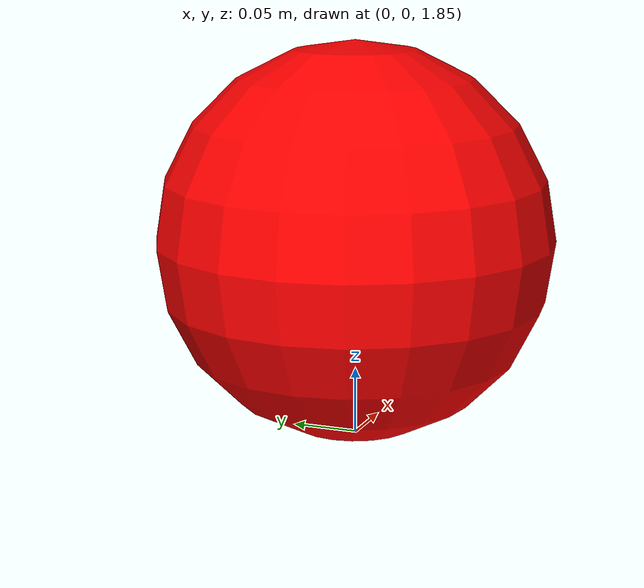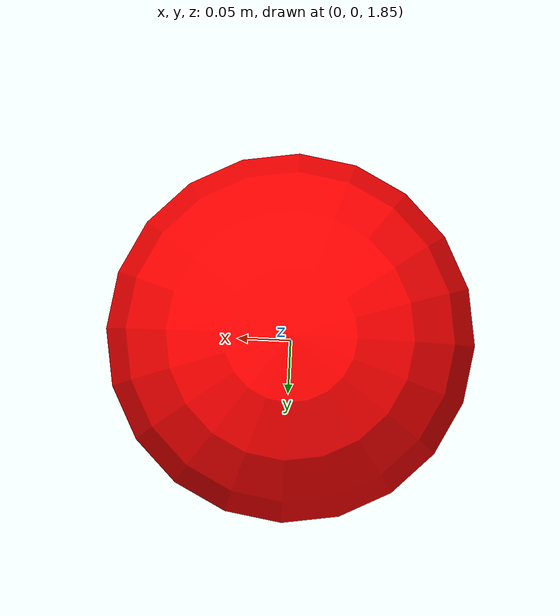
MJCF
<mujoco>
<compiler angle="radian" coordinate="local" inertiafromgeom="true"/>
<default>
	<joint armature="0" damping="0" limited="false" />
	<geom conaffinity="1" condim="3" density="100" friction="1 0.5 0.5" margin="0.01" rgba="0.8 0.6 0.4 1" />
</default>
   <option gravity="0 0 -9.81" timestep="0.005"/>
   <worldbody>
        <geom condim="3" size="1.0 1.0 0.000001" rgba="0 1 0 1" type="plane"/>
        <light diffuse=".5 .5 .5" pos="0 0 10" dir="0 0 -1"/>
        <body name="ball" pos="0 0 2">
            <joint axis="1 0 0" damping="0.1" name="slideX" pos="0 0 0" type="slide"/>
            <joint axis="0 1 0" damping="0.1" name="slideY" pos="0 0 0" type="slide"/>
 	    <joint axis="0 0 1" damping="0.1" name="slideZ" pos="0 0 0" type="slide"/>
            <geom mass="10" pos="0 0 0" rgba="1 0 0 1" size="0.15" type="sphere"/>
	    <camera euler="0 0 0" fovy="40" name="rgb" pos="0 0 2.5"></camera>
        </body>
   </worldbody>
    <actuator>
        <motor name="actX" gear="2000.0" joint="slideX"/>
        <motor name="actY" gear="2000.0" joint="slideY"/>
        <motor name="actZ" gear="2000.0" joint="slideZ"/>
    </actuator>
</mujoco>
